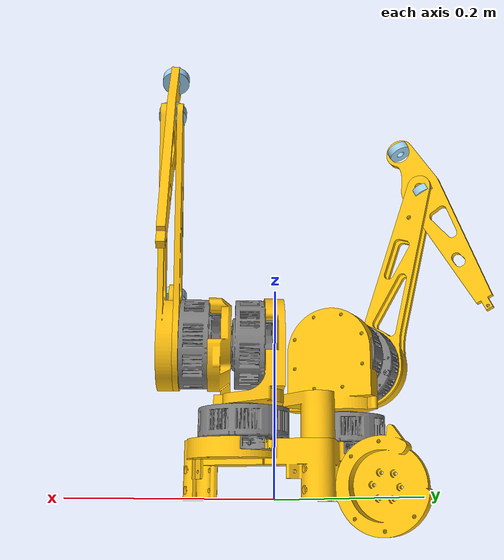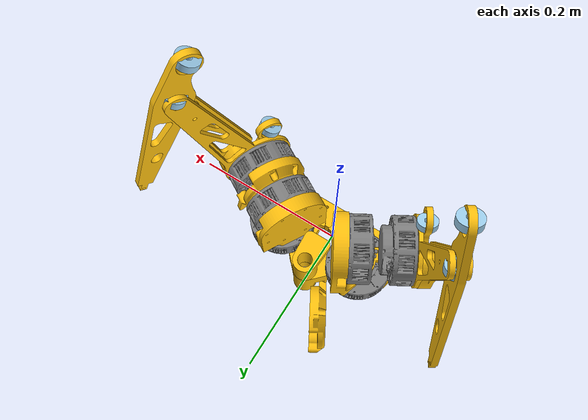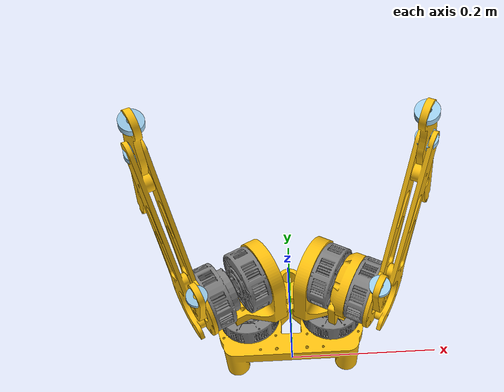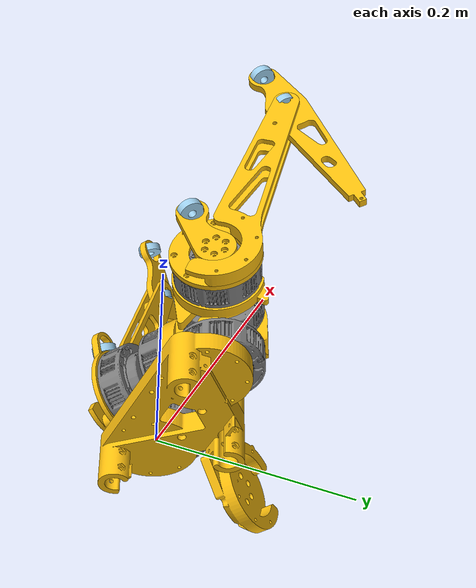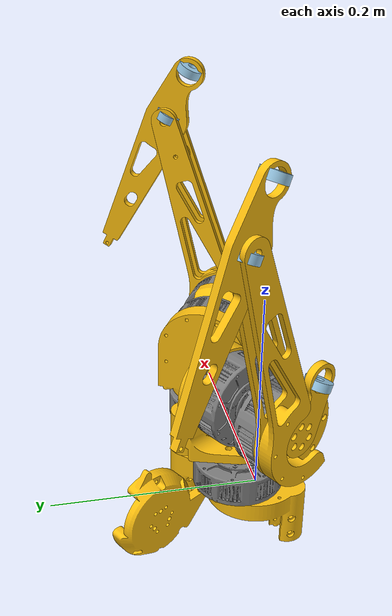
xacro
<?xml version="1.0" ?>
<!-- Generated using onshape-to-robot -->
<!-- Onshape https://cad.onshape.com/documents/ed1b080484db78e51ca91539/w/7397a458a49a8100160f52cd/e/9cc5d95f68bd237afce05dc0 -->
<robot name="robot" xmlns:xacro="http://www.ros.org/wiki/xacro">
<xacro:arg name="sim_mode" default="false"/>

<xacro:if value="$(arg sim_mode)">
  <xacro:include filename="$(find quadro)/description/leg.gazebo" />
</xacro:if>

<xacro:unless value="$(arg sim_mode)">
  <xacro:include filename="$(find quadro)/description/robot_ros2_control.xacro" />
</xacro:unless>
  <!-- Link motor -->
  <link name="world"/>

  <joint name="fixed" type="fixed">
    <parent link="world"/>
    <child link="motor"/>
  </joint>

  <!-- Link motor -->
  <link name="motor">
    <inertial>
      <origin xyz="0.000167595 0.0335997 0.0536899" rpy="0 0 0"/>
      <mass value="0.840992"/>
      <inertia ixx="0.000727199" ixy="-1.7348e-08" ixz="-1.37499e-06" iyy="0.00274647" iyz="-6.25483e-05" izz="0.00292446"/>
    </inertial>
    <!-- Part motor -->
    <visual>
      <origin xyz="-0.055 0.0342754 0.051" rpy="-1.5708 -1.5708 0"/>
      <geometry>
        <mesh filename="file://$(find quadro)/description/leg_assets/motor.stl"/>
      </geometry>
      <material name="motor_material">
        <color rgba="0.498039 0.498039 0.498039 1"/>
      </material>
    </visual>
    <collision>
      <origin xyz="-0.055 0.0342754 0.051" rpy="-1.5708 -1.5708 0"/>
      <geometry>
        <mesh filename="file://$(find quadro)/description/leg_assets/motor.stl"/>
      </geometry>
    </collision>
    <!-- Part back_plate -->
    <visual>
      <origin xyz="-1.38778e-17 0.0692754 0.04" rpy="1.5708 -0 0"/>
      <geometry>
        <mesh filename="file://$(find quadro)/description/leg_assets/back_plate.stl"/>
      </geometry>
      <material name="back_plate_material">
        <color rgba="1 0.756863 0.054902 1"/>
      </material>
    </visual>
    <collision>
      <origin xyz="-1.38778e-17 0.0692754 0.04" rpy="1.5708 -0 0"/>
      <geometry>
        <mesh filename="file://$(find quadro)/description/leg_assets/back_plate.stl"/>
      </geometry>
    </collision>
    <!-- Part back_stop -->
    <visual>
      <origin xyz="2.498e-16 0.0692754 -0.0079" rpy="-1.5708 -0 3.14159"/>
      <geometry>
        <mesh filename="file://$(find quadro)/description/leg_assets/back_stop.stl"/>
      </geometry>
      <material name="back_stop_material">
        <color rgba="1 0.756863 0.054902 1"/>
      </material>
    </visual>
    <collision>
      <origin xyz="2.498e-16 0.0692754 -0.0079" rpy="-1.5708 -0 3.14159"/>
      <geometry>
        <mesh filename="file://$(find quadro)/description/leg_assets/back_stop.stl"/>
      </geometry>
    </collision>
    <!-- Part motor_2 -->
    <visual>
      <origin xyz="0.055 0.0342754 0.051" rpy="-1.5708 -1.5708 0"/>
      <geometry>
        <mesh filename="file://$(find quadro)/description/leg_assets/motor.stl"/>
      </geometry>
      <material name="motor_2_material">
        <color rgba="0.498039 0.498039 0.498039 1"/>
      </material>
    </visual>
    <collision>
      <origin xyz="0.055 0.0342754 0.051" rpy="-1.5708 -1.5708 0"/>
      <geometry>
        <mesh filename="file://$(find quadro)/description/leg_assets/motor.stl"/>
      </geometry>
    </collision>
  </link>
  <!-- Link shaft -->
  <link name="shaft">
    <inertial>
      <origin xyz="-0.00365203 -0.00743033 -0.0538481" rpy="0 0 0"/>
      <mass value="0.500834"/>
      <inertia ixx="0.000667976" ixy="4.87254e-05" ixz="-1.74582e-05" iyy="0.000715416" iyz="-3.36343e-05" izz="0.000280763"/>
    </inertial>
    <!-- Part lin_1_support_br -->
    <visual>
      <origin xyz="-0.014 -0.0242487 -0.0735" rpy="2.61799 -1.5708 0"/>
      <geometry>
        <mesh filename="file://$(find quadro)/description/leg_assets/lin_1_support_br.stl"/>
      </geometry>
      <material name="lin_1_support_br_material">
        <color rgba="1 0.756863 0.054902 1"/>
      </material>
    </visual>
    <collision>
      <origin xyz="-0.014 -0.0242487 -0.0735" rpy="2.61799 -1.5708 0"/>
      <geometry>
        <mesh filename="file://$(find quadro)/description/leg_assets/lin_1_support_br.stl"/>
      </geometry>
    </collision>
    <!-- Part shaft -->
    <visual>
      <origin xyz="0 0 0.01" rpy="1.5708 1.5708 0"/>
      <geometry>
        <mesh filename="file://$(find quadro)/description/leg_assets/shaft.stl"/>
      </geometry>
      <material name="shaft_material">
        <color rgba="0.498039 0.498039 0.498039 1"/>
      </material>
    </visual>
    <collision>
      <origin xyz="0 0 0.01" rpy="1.5708 1.5708 0"/>
      <geometry>
        <mesh filename="file://$(find quadro)/description/leg_assets/shaft.stl"/>
      </geometry>
    </collision>
    <!-- Part motor_3 -->
    <visual>
      <origin xyz="-0.0085 -0.0147224 -0.0735" rpy="-1.5708 1.52638e-15 1.0472"/>
      <geometry>
        <mesh filename="file://$(find quadro)/description/leg_assets/motor.stl"/>
      </geometry>
      <material name="motor_3_material">
        <color rgba="0.498039 0.498039 0.498039 1"/>
      </material>
    </visual>
    <collision>
      <origin xyz="-0.0085 -0.0147224 -0.0735" rpy="-1.5708 1.52638e-15 1.0472"/>
      <geometry>
        <mesh filename="file://$(find quadro)/description/leg_assets/motor.stl"/>
      </geometry>
    </collision>
  </link>
  <!-- Link lin_2_br -->
  <link name="lin_2_br">
    <inertial>
      <origin xyz="-0.00583084 -0.0129347 -0.0439786" rpy="0 0 0"/>
      <mass value="0.55866"/>
      <inertia ixx="0.00153356" ixy="-0.000384147" ixz="-0.000112834" iyy="0.000635101" iyz="-0.000224573" izz="0.00157526"/>
    </inertial>
    <!-- Part lin_2_br -->
    <visual>
      <origin xyz="-0.0577297 0.123802 -0.0195" rpy="1.5708 1.94085e-14 2.00713"/>
      <geometry>
        <mesh filename="file://$(find quadro)/description/leg_assets/lin_2_br.stl"/>
      </geometry>
      <material name="lin_2_br_material">
        <color rgba="1 0.756863 0.054902 1"/>
      </material>
    </visual>
    <collision>
      <origin xyz="-0.0577297 0.123802 -0.0195" rpy="1.5708 1.94085e-14 2.00713"/>
      <geometry>
        <mesh filename="file://$(find quadro)/description/leg_assets/lin_2_br.stl"/>
      </geometry>
    </collision>
    <!-- Part shaft_2 -->
    <visual>
      <origin xyz="1.38778e-17 0 0.01" rpy="1.5708 1.5708 0"/>
      <geometry>
        <mesh filename="file://$(find quadro)/description/leg_assets/shaft.stl"/>
      </geometry>
      <material name="shaft_2_material">
        <color rgba="0.498039 0.498039 0.498039 1"/>
      </material>
    </visual>
    <collision>
      <origin xyz="1.38778e-17 0 0.01" rpy="1.5708 1.5708 0"/>
      <geometry>
        <mesh filename="file://$(find quadro)/description/leg_assets/shaft.stl"/>
      </geometry>
    </collision>
    <!-- Part lin_3_top_r -->
    <visual>
      <origin xyz="7.91034e-16 -1.11022e-16 -0.0645" rpy="1.5708 -1.25557e-14 1.22173"/>
      <geometry>
        <mesh filename="file://$(find quadro)/description/leg_assets/lin_3_top_r.stl"/>
      </geometry>
      <material name="lin_3_top_r_material">
        <color rgba="1 0.756863 0.054902 1"/>
      </material>
    </visual>
    <collision>
      <origin xyz="7.91034e-16 -1.11022e-16 -0.0645" rpy="1.5708 -1.25557e-14 1.22173"/>
      <geometry>
        <mesh filename="file://$(find quadro)/description/leg_assets/lin_3_top_r.stl"/>
      </geometry>
    </collision>
    <!-- Part lin_3_bot_r -->
    <visual>
      <origin xyz="8.18789e-16 0 -0.0645" rpy="1.5708 -1.25835e-14 1.22173"/>
      <geometry>
        <mesh filename="file://$(find quadro)/description/leg_assets/lin_3_bot_r.stl"/>
      </geometry>
      <material name="lin_3_bot_r_material">
        <color rgba="1 0.756863 0.054902 1"/>
      </material>
    </visual>
    <collision>
      <origin xyz="8.18789e-16 0 -0.0645" rpy="1.5708 -1.25835e-14 1.22173"/>
      <geometry>
        <mesh filename="file://$(find quadro)/description/leg_assets/lin_3_bot_r.stl"/>
      </geometry>
    </collision>
    <!-- Part motor_4 -->
    <visual>
      <origin xyz="8.25728e-16 -2.77556e-17 -0.0385" rpy="2.70526 1.5708 0"/>
      <geometry>
        <mesh filename="file://$(find quadro)/description/leg_assets/motor.stl"/>
      </geometry>
      <material name="motor_4_material">
        <color rgba="0.498039 0.498039 0.498039 1"/>
      </material>
    </visual>
    <collision>
      <origin xyz="8.25728e-16 -2.77556e-17 -0.0385" rpy="2.70526 1.5708 0"/>
      <geometry>
        <mesh filename="file://$(find quadro)/description/leg_assets/motor.stl"/>
      </geometry>
    </collision>
    <!-- Part bearing -->
    <visual>
      <origin xyz="-0.068404 -0.187939 -0.074" rpy="3.14159 -3.7582e-14 0.436332"/>
      <geometry>
        <mesh filename="file://$(find quadro)/description/leg_assets/bearing.stl"/>
      </geometry>
      <material name="bearing_material">
        <color rgba="0.615686 0.811765 0.929412 1"/>
      </material>
    </visual>
    <collision>
      <origin xyz="-0.068404 -0.187939 -0.074" rpy="3.14159 -3.7582e-14 0.436332"/>
      <geometry>
        <mesh filename="file://$(find quadro)/description/leg_assets/bearing.stl"/>
      </geometry>
    </collision>
  </link>
  <!-- Link lin_top_r -->
  <link name="lin_top_r">
    <inertial>
      <origin xyz="0.000209323 -0.00444903 -0.0125923" rpy="0 0 0"/>
      <mass value="0.140118"/>
      <inertia ixx="4.45628e-05" ixy="6.46821e-07" ixz="3.78582e-07" iyy="1.92125e-05" iyz="-8.04655e-06" izz="4.62705e-05"/>
    </inertial>
    <!-- Part lin_top_r -->
    <visual>
      <origin xyz="-2.77556e-17 4.16334e-17 0.003" rpy="1.5708 -7.50078e-16 5.55112e-17"/>
      <geometry>
        <mesh filename="file://$(find quadro)/description/leg_assets/lin_top_r.stl"/>
      </geometry>
      <material name="lin_top_r_material">
        <color rgba="1 0.756863 0.054902 1"/>
      </material>
    </visual>
    <collision>
      <origin xyz="-2.77556e-17 4.16334e-17 0.003" rpy="1.5708 -7.50078e-16 5.55112e-17"/>
      <geometry>
        <mesh filename="file://$(find quadro)/description/leg_assets/lin_top_r.stl"/>
      </geometry>
    </collision>
    <!-- Part bearing_2 -->
    <visual>
      <origin xyz="0 -0.05 -0.0255" rpy="-3.14159 -1.19417e-15 -5.55112e-17"/>
      <geometry>
        <mesh filename="file://$(find quadro)/description/leg_assets/bearing.stl"/>
      </geometry>
      <material name="bearing_2_material">
        <color rgba="0.615686 0.811765 0.929412 1"/>
      </material>
    </visual>
    <collision>
      <origin xyz="0 -0.05 -0.0255" rpy="-3.14159 -1.19417e-15 -5.55112e-17"/>
      <geometry>
        <mesh filename="file://$(find quadro)/description/leg_assets/bearing.stl"/>
      </geometry>
    </collision>
    <!-- Part shaft_3 -->
    <visual>
      <origin xyz="0 1.38778e-17 0.01" rpy="1.5708 1.5708 0"/>
      <geometry>
        <mesh filename="file://$(find quadro)/description/leg_assets/shaft.stl"/>
      </geometry>
      <material name="shaft_3_material">
        <color rgba="0.498039 0.498039 0.498039 1"/>
      </material>
    </visual>
    <collision>
      <origin xyz="0 1.38778e-17 0.01" rpy="1.5708 1.5708 0"/>
      <geometry>
        <mesh filename="file://$(find quadro)/description/leg_assets/shaft.stl"/>
      </geometry>
    </collision>
  </link>
  <!-- Joint from lin_2_br to lin_top_r -->
  <joint name="joint_br_3" type="revolute">
    <origin xyz="8.25728e-16 -8.32667e-17 -0.0485" rpy="-1.90199e-14 -3.69158e-14 0.436332"/>
    <parent link="lin_2_br"/>
    <child link="lin_top_r"/>
    <axis xyz="0 0 -1"/>
    <limit effort="10" velocity="10" lower="-3.141592653589793" upper="3.141592653589793"/>
  </joint>
  <!-- Link lin_4_r -->
  <link name="lin_4_r">
    <inertial>
      <origin xyz="-0.00037679 -0.0270176 -5.21118e-10" rpy="0 0 0"/>
      <mass value="0.0488058"/>
      <inertia ixx="0.000183398" ixy="1.69668e-06" ixz="2.68516e-13" iyy="4.65047e-06" iyz="1.73007e-12" izz="0.00018765"/>
    </inertial>
    <!-- Part lin_4_r -->
    <visual>
      <origin xyz="0.2 -7.88258e-15 -0.0085" rpy="-1.5708 -1.18604e-16 -3.9746e-14"/>
      <geometry>
        <mesh filename="file://$(find quadro)/description/leg_assets/lin_4_r.stl"/>
      </geometry>
      <material name="lin_4_r_material">
        <color rgba="1 0.756863 0.054902 1"/>
      </material>
    </visual>
    <collision>
      <origin xyz="0.2 -7.88258e-15 -0.0085" rpy="-1.5708 -1.18604e-16 -3.9746e-14"/>
      <geometry>
        <mesh filename="file://$(find quadro)/description/leg_assets/lin_4_r.stl"/>
      </geometry>
    </collision>
    <!-- Part bearing_3 -->
    <visual>
      <origin xyz="1.94289e-15 0.05 -1.38778e-17" rpy="3.14159 -1.18604e-16 -3.95795e-14"/>
      <geometry>
        <mesh filename="file://$(find quadro)/description/leg_assets/bearing.stl"/>
      </geometry>
      <material name="bearing_3_material">
        <color rgba="0.615686 0.811765 0.929412 1"/>
      </material>
    </visual>
    <collision>
      <origin xyz="1.94289e-15 0.05 -1.38778e-17" rpy="3.14159 -1.18604e-16 -3.95795e-14"/>
      <geometry>
        <mesh filename="file://$(find quadro)/description/leg_assets/bearing.stl"/>
      </geometry>
    </collision>
  </link>
  <!-- Joint from lin_2_br to lin_4_r -->
  <joint name="br_l4_l3" type="revolute">
    <origin xyz="-0.068404 -0.187939 -0.074" rpy="3.14159 -3.7582e-14 0.436332"/>
    <parent link="lin_2_br"/>
    <child link="lin_4_r"/>
    <axis xyz="0 0 -1"/>
    <limit effort="10" velocity="10" lower="-3.141592653589793" upper="3.141592653589793"/>
    <mimic joint="joint_br_3" multiplier="-1.0"/>
  </joint>
  <!-- Joint from shaft to lin_2_br -->
  <joint name="joint_br_2" type="revolute">
    <origin xyz="-0.0035 -0.00606218 -0.0735" rpy="1.5708 8.1119e-15 -0.523599"/>
    <parent link="shaft"/>
    <child link="lin_2_br"/>
    <axis xyz="0 0 -1"/>
    <limit effort="10" velocity="10" lower="-3.141592653589793" upper="3.141592653589793"/>
  </joint>
  <!-- Joint from motor to shaft -->
  <joint name="joint_br_1" type="revolute">
    <origin xyz="-0.055 0.0342754 0.061" rpy="-3.14159 -2.04333e-29 -1.5708"/>
    <parent link="motor"/>
    <child link="shaft"/>
    <axis xyz="0 0 -1"/>
    <limit effort="10" velocity="10" lower="-3.141592653589793" upper="3.141592653589793"/>
  </joint>
  <!-- Link shaft_2 -->
  <link name="shaft_2">
    <inertial>
      <origin xyz="-0.00365203 0.00743033 -0.0535667" rpy="0 0 0"/>
      <mass value="0.500834"/>
      <inertia ixx="0.000662397" ixy="-4.87254e-05" ixz="-1.77194e-05" iyy="0.000709837" iyz="3.40867e-05" izz="0.000280763"/>
    </inertial>
    <!-- Part shaft_4 -->
    <visual>
      <origin xyz="0 0 0.01" rpy="1.5708 1.5708 0"/>
      <geometry>
        <mesh filename="file://$(find quadro)/description/leg_assets/shaft.stl"/>
      </geometry>
      <material name="shaft_4_material">
        <color rgba="0.498039 0.498039 0.498039 1"/>
      </material>
    </visual>
    <collision>
      <origin xyz="0 0 0.01" rpy="1.5708 1.5708 0"/>
      <geometry>
        <mesh filename="file://$(find quadro)/description/leg_assets/shaft.stl"/>
      </geometry>
    </collision>
    <!-- Part motor_5 -->
    <visual>
      <origin xyz="-0.0085 0.0147224 -0.0735" rpy="1.5708 8.92383e-17 -1.0472"/>
      <geometry>
        <mesh filename="file://$(find quadro)/description/leg_assets/motor.stl"/>
      </geometry>
      <material name="motor_5_material">
        <color rgba="0.498039 0.498039 0.498039 1"/>
      </material>
    </visual>
    <collision>
      <origin xyz="-0.0085 0.0147224 -0.0735" rpy="1.5708 8.92383e-17 -1.0472"/>
      <geometry>
        <mesh filename="file://$(find quadro)/description/leg_assets/motor.stl"/>
      </geometry>
    </collision>
    <!-- Part lin_1_support_bl -->
    <visual>
      <origin xyz="-0.0485 0.0840045 -0.0735" rpy="-2.61799 -1.5708 0"/>
      <geometry>
        <mesh filename="file://$(find quadro)/description/leg_assets/lin_1_support_bl.stl"/>
      </geometry>
      <material name="lin_1_support_bl_material">
        <color rgba="1 0.756863 0.054902 1"/>
      </material>
    </visual>
    <collision>
      <origin xyz="-0.0485 0.0840045 -0.0735" rpy="-2.61799 -1.5708 0"/>
      <geometry>
        <mesh filename="file://$(find quadro)/description/leg_assets/lin_1_support_bl.stl"/>
      </geometry>
    </collision>
  </link>
  <!-- Link motor_2 -->
  <link name="motor_2">
    <inertial>
      <origin xyz="-0.00512367 0.0104232 -0.0435875" rpy="0 0 0"/>
      <mass value="0.551476"/>
      <inertia ixx="0.00130661" ixy="0.000304518" ixz="-9.96006e-05" iyy="0.000599134" iyz="0.000185395" izz="0.00132552"/>
    </inertial>
    <!-- Part lin_3_top_l -->
    <visual>
      <origin xyz="6.52256e-16 1.11022e-16 0.087" rpy="-1.5708 7.28298e-16 -1.22173"/>
      <geometry>
        <mesh filename="file://$(find quadro)/description/leg_assets/lin_3_top_l.stl"/>
      </geometry>
      <material name="lin_3_top_l_material">
        <color rgba="1 0.756863 0.054902 1"/>
      </material>
    </visual>
    <collision>
      <origin xyz="6.52256e-16 1.11022e-16 0.087" rpy="-1.5708 7.28298e-16 -1.22173"/>
      <geometry>
        <mesh filename="file://$(find quadro)/description/leg_assets/lin_3_top_l.stl"/>
      </geometry>
    </collision>
    <!-- Part lin_2_bl -->
    <visual>
      <origin xyz="-6.93889e-18 -5.55112e-17 -0.0195" rpy="1.5708 4.12056e-17 1.13446"/>
      <geometry>
        <mesh filename="file://$(find quadro)/description/leg_assets/lin_2_bl.stl"/>
      </geometry>
      <material name="lin_2_bl_material">
        <color rgba="1 0.756863 0.054902 1"/>
      </material>
    </visual>
    <collision>
      <origin xyz="-6.93889e-18 -5.55112e-17 -0.0195" rpy="1.5708 4.12056e-17 1.13446"/>
      <geometry>
        <mesh filename="file://$(find quadro)/description/leg_assets/lin_2_bl.stl"/>
      </geometry>
    </collision>
    <!-- Part lin_3_bot_l -->
    <visual>
      <origin xyz="6.80012e-16 5.55112e-17 0.087" rpy="-1.5708 -4.65192e-16 -1.22173"/>
      <geometry>
        <mesh filename="file://$(find quadro)/description/leg_assets/lin_3_bot_l.stl"/>
      </geometry>
      <material name="lin_3_bot_l_material">
        <color rgba="1 0.756863 0.054902 1"/>
      </material>
    </visual>
    <collision>
      <origin xyz="6.80012e-16 5.55112e-17 0.087" rpy="-1.5708 -4.65192e-16 -1.22173"/>
      <geometry>
        <mesh filename="file://$(find quadro)/description/leg_assets/lin_3_bot_l.stl"/>
      </geometry>
    </collision>
    <!-- Part shaft_5 -->
    <visual>
      <origin xyz="0 0 0.01" rpy="1.5708 1.5708 0"/>
      <geometry>
        <mesh filename="file://$(find quadro)/description/leg_assets/shaft.stl"/>
      </geometry>
      <material name="shaft_5_material">
        <color rgba="0.498039 0.498039 0.498039 1"/>
      </material>
    </visual>
    <collision>
      <origin xyz="0 0 0.01" rpy="1.5708 1.5708 0"/>
      <geometry>
        <mesh filename="file://$(find quadro)/description/leg_assets/shaft.stl"/>
      </geometry>
    </collision>
    <!-- Part motor_6 -->
    <visual>
      <origin xyz="8.95117e-16 2.77556e-17 -0.0385" rpy="-2.70526 1.5708 0"/>
      <geometry>
        <mesh filename="file://$(find quadro)/description/leg_assets/motor.stl"/>
      </geometry>
      <material name="motor_6_material">
        <color rgba="0.498039 0.498039 0.498039 1"/>
      </material>
    </visual>
    <collision>
      <origin xyz="8.95117e-16 2.77556e-17 -0.0385" rpy="-2.70526 1.5708 0"/>
      <geometry>
        <mesh filename="file://$(find quadro)/description/leg_assets/motor.stl"/>
      </geometry>
    </collision>
  </link>
  <!-- Link shaft_3 -->
  <link name="shaft_3">
    <inertial>
      <origin xyz="0.00329395 0.00299792 -0.0125923" rpy="0 0 0"/>
      <mass value="0.140118"/>
      <inertia ixx="3.12408e-05" ixy="-1.26751e-05" ixz="5.95745e-06" iyy="3.25345e-05" iyz="5.42205e-06" izz="4.62705e-05"/>
    </inertial>
    <!-- Part shaft_6 -->
    <visual>
      <origin xyz="8.67362e-18 2.77556e-17 0.01" rpy="1.5708 1.5708 0"/>
      <geometry>
        <mesh filename="file://$(find quadro)/description/leg_assets/shaft.stl"/>
      </geometry>
      <material name="shaft_6_material">
        <color rgba="0.498039 0.498039 0.498039 1"/>
      </material>
    </visual>
    <collision>
      <origin xyz="8.67362e-18 2.77556e-17 0.01" rpy="1.5708 1.5708 0"/>
      <geometry>
        <mesh filename="file://$(find quadro)/description/leg_assets/shaft.stl"/>
      </geometry>
    </collision>
    <!-- Part bearing_4 -->
    <visual>
      <origin xyz="0.0353553 0.0353553 -0.0255" rpy="3.14159 2.00877e-16 -0.785398"/>
      <geometry>
        <mesh filename="file://$(find quadro)/description/leg_assets/bearing.stl"/>
      </geometry>
      <material name="bearing_4_material">
        <color rgba="0.615686 0.811765 0.929412 1"/>
      </material>
    </visual>
    <collision>
      <origin xyz="0.0353553 0.0353553 -0.0255" rpy="3.14159 2.00877e-16 -0.785398"/>
      <geometry>
        <mesh filename="file://$(find quadro)/description/leg_assets/bearing.stl"/>
      </geometry>
    </collision>
    <!-- Part lin_top_l -->
    <visual>
      <origin xyz="-5.20417e-18 5.55112e-17 0.1545" rpy="-1.5708 1.45366e-16 -0.785398"/>
      <geometry>
        <mesh filename="file://$(find quadro)/description/leg_assets/lin_top_l.stl"/>
      </geometry>
      <material name="lin_top_l_material">
        <color rgba="1 0.756863 0.054902 1"/>
      </material>
    </visual>
    <collision>
      <origin xyz="-5.20417e-18 5.55112e-17 0.1545" rpy="-1.5708 1.45366e-16 -0.785398"/>
      <geometry>
        <mesh filename="file://$(find quadro)/description/leg_assets/lin_top_l.stl"/>
      </geometry>
    </collision>
  </link>
  <!-- Joint from motor_2 to shaft_3 -->
  <joint name="joint_bl_3" type="revolute">
    <origin xyz="9.22873e-16 8.32667e-17 -0.0485" rpy="8.67076e-16 -1.64245e-15 0.349066"/>
    <parent link="motor_2"/>
    <child link="shaft_3"/>
    <axis xyz="0 0 1"/>
    <limit effort="10" velocity="10" lower="-3.141592653589793" upper="3.141592653589793"/>
  </joint>
  <!-- Link lin_4_l -->
  <link name="lin_4_l">
    <inertial>
      <origin xyz="-0.000328446 -0.0235508 -0.0035" rpy="0 0 0"/>
      <mass value="0.0559903"/>
      <inertia ixx="0.000188216" ixy="1.63294e-06" ixz="2.67287e-13" iyy="4.89802e-06" iyz="1.6419e-12" izz="0.000192656"/>
    </inertial>
    <!-- Part bearing_5 -->
    <visual>
      <origin xyz="0 0.05 -0.0035" rpy="3.14159 1.9226e-17 5.55112e-17"/>
      <geometry>
        <mesh filename="file://$(find quadro)/description/leg_assets/bearing.stl"/>
      </geometry>
      <material name="bearing_5_material">
        <color rgba="0.615686 0.811765 0.929412 1"/>
      </material>
    </visual>
    <collision>
      <origin xyz="0 0.05 -0.0035" rpy="3.14159 1.9226e-17 5.55112e-17"/>
      <geometry>
        <mesh filename="file://$(find quadro)/description/leg_assets/bearing.stl"/>
      </geometry>
    </collision>
    <!-- Part bearing_6 -->
    <visual>
      <origin xyz="-5.55112e-17 0 -0.0035" rpy="3.14159 1.9226e-17 5.55112e-17"/>
      <geometry>
        <mesh filename="file://$(find quadro)/description/leg_assets/bearing.stl"/>
      </geometry>
      <material name="bearing_6_material">
        <color rgba="0.615686 0.811765 0.929412 1"/>
      </material>
    </visual>
    <collision>
      <origin xyz="-5.55112e-17 0 -0.0035" rpy="3.14159 1.9226e-17 5.55112e-17"/>
      <geometry>
        <mesh filename="file://$(find quadro)/description/leg_assets/bearing.stl"/>
      </geometry>
    </collision>
    <!-- Part lin_4_l -->
    <visual>
      <origin xyz="0.2 0 0.1565" rpy="-1.5708 1.9226e-17 0"/>
      <geometry>
        <mesh filename="file://$(find quadro)/description/leg_assets/lin_4_l.stl"/>
      </geometry>
      <material name="lin_4_l_material">
        <color rgba="1 0.756863 0.054902 1"/>
      </material>
    </visual>
    <collision>
      <origin xyz="0.2 0 0.1565" rpy="-1.5708 1.9226e-17 0"/>
      <geometry>
        <mesh filename="file://$(find quadro)/description/leg_assets/lin_4_l.stl"/>
      </geometry>
    </collision>
  </link>
  <!-- Joint from motor_2 to lin_4_l -->
  <joint name="bl_l4_l3" type="revolute">
    <origin xyz="-0.068404 0.187939 -0.0705" rpy="7.63706e-16 -1.37363e-15 -0.436332"/>
    <parent link="motor_2"/>
    <child link="lin_4_l"/>
    <axis xyz="0 0 1"/>
    <limit effort="10" velocity="10" lower="-3.141592653589793" upper="3.141592653589793"/>
    <mimic joint="joint_bl_3" multiplier="1.0"/>
  </joint>
  <!-- Joint from shaft_2 to motor_2 -->
  <joint name="joint_bl_2" type="revolute">
    <origin xyz="-0.0035 0.00606218 -0.0735" rpy="-1.5708 3.45644e-16 0.523599"/>
    <parent link="shaft_2"/>
    <child link="motor_2"/>
    <axis xyz="0 0 1"/>
    <limit effort="10" velocity="10" lower="-3.141592653589793" upper="3.141592653589793"/>
  </joint>
  <!-- Joint from motor to shaft_2 -->
  <joint name="joint_bl_1" type="revolute">
    <origin xyz="0.055 0.0342754 0.061" rpy="-3.14159 2.64698e-23 -1.5708"/>
    <parent link="motor"/>
    <child link="shaft_2"/>
    <axis xyz="0 0 -1"/>
    <limit effort="10" velocity="10" lower="-3.141592653589793" upper="3.141592653589793"/>
  </joint>
</robot>
